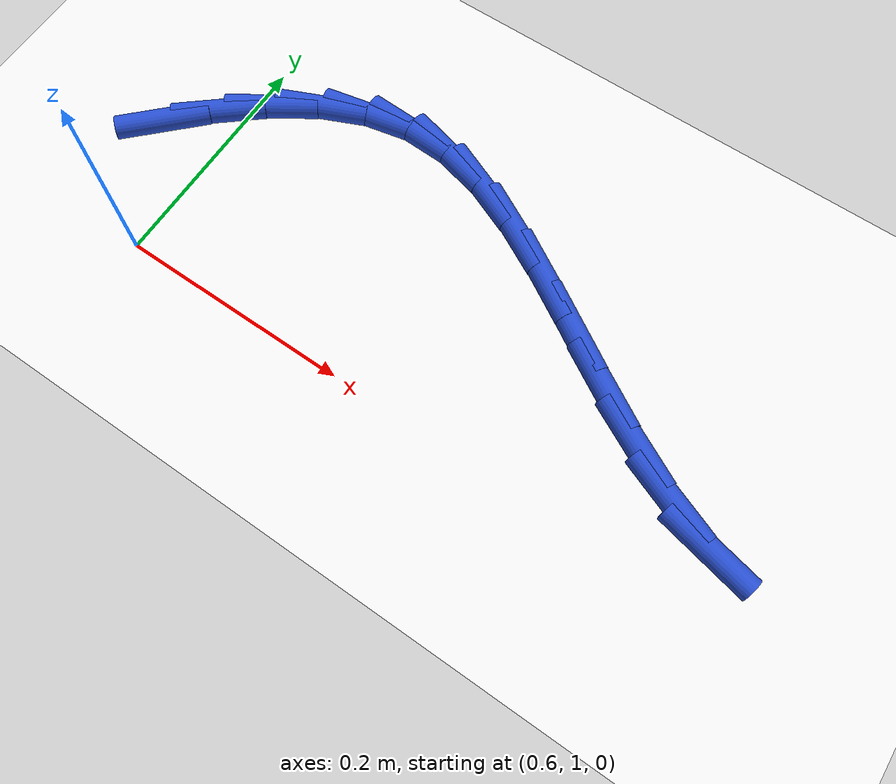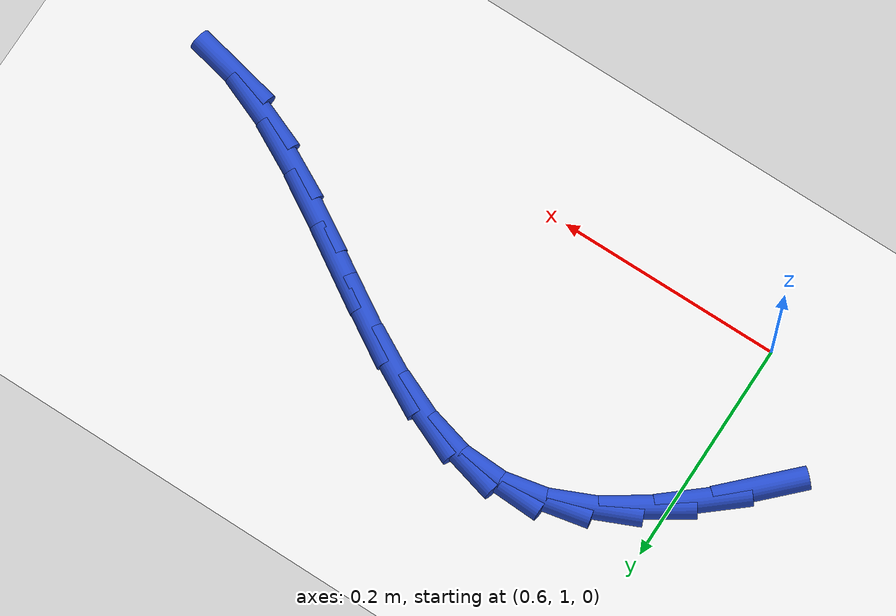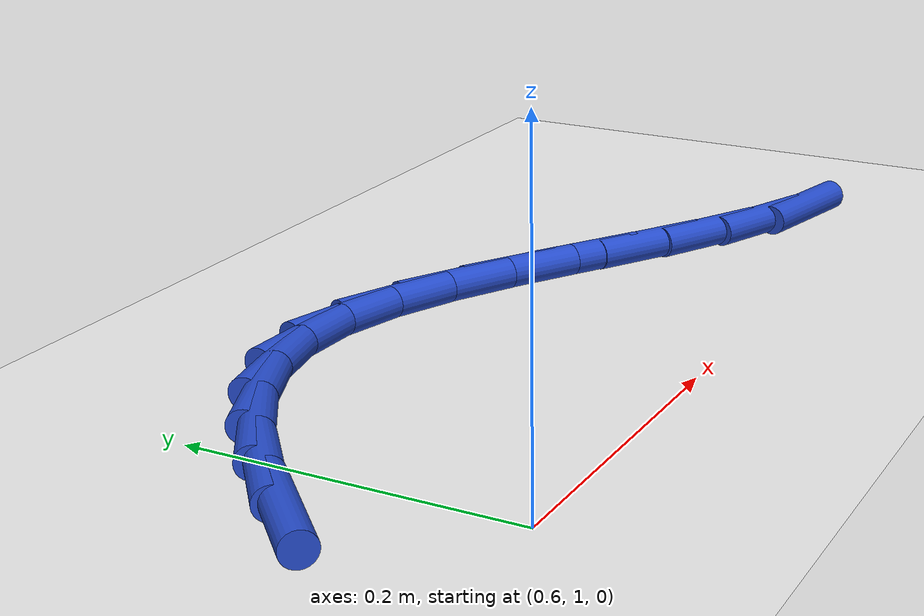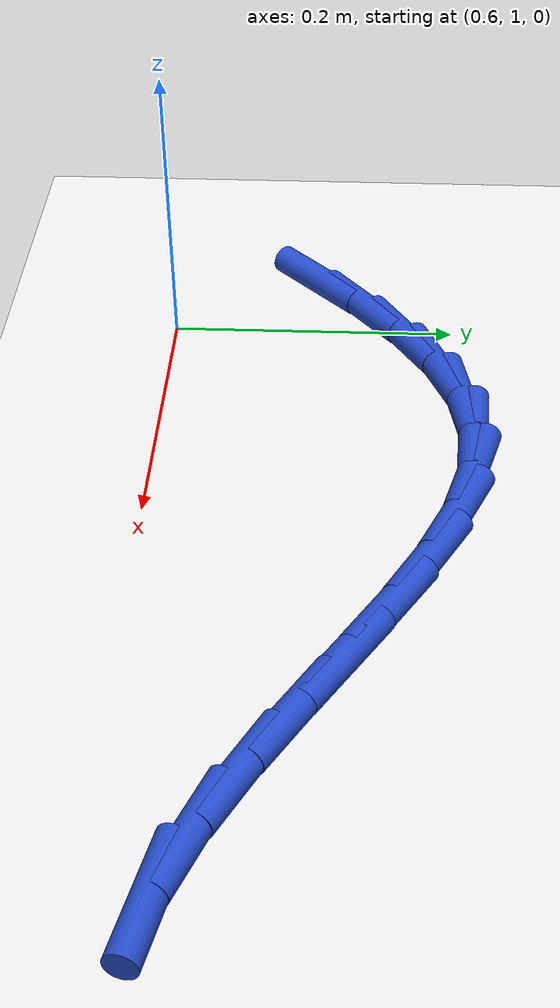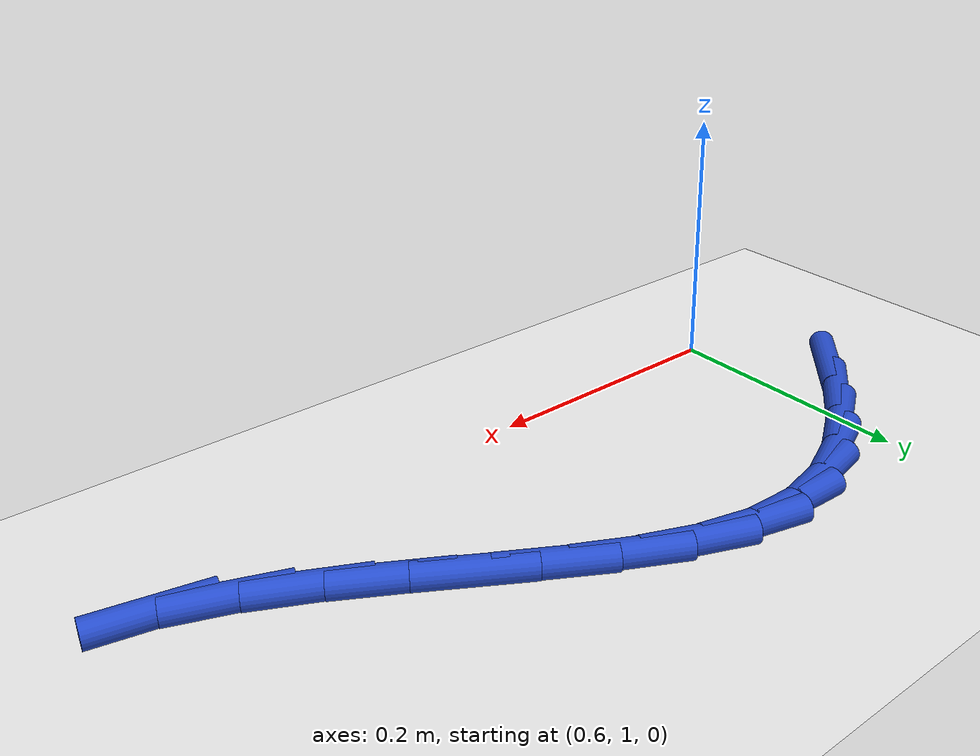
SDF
<sdf version="1.6">
 <world name="default">
  <model name="ground_plane">
   <static>1</static>
   <link name="link">
    <collision name="collision">
     <geometry><plane><normal>0 0 1</normal><size>100 100</size></plane></geometry>
     <surface><friction><ode><mu>100</mu><mu2>50</mu2></ode></friction></surface>
    </collision>
    <visual name="visual">
     <cast_shadows>0</cast_shadows>
     <geometry><plane><normal>0 0 1</normal><size>100 100</size></plane></geometry>
     <material>
      <script><uri>file://media/materials/scripts/gazebo.material</uri><name>Gazebo/WhiteGlow</name></script>
     </material>
    </visual>
   </link>
  </model>
  <model name="line">
   <link name="link_28">
    <pose>0.5466348563264035 1.1023889479485451 0.01 0 1.57 0.7892634327585224</pose>
    <collision name="collision">
     <geometry><cylinder><radius>0.01</radius><length>0.08</length></cylinder></geometry>
    </collision>
    <visual name="visual">
     <material>
      <script><name>Gazebo/Blue</name><uri>file://media/materials/scripts/gazebo.material</uri></script>
     </material>
     <geometry><cylinder><radius>0.01</radius><length>0.08</length></cylinder></geometry>
    </visual>
   </link>
   <link name="link_29">
    <pose>0.5802198890542654 1.136234619810866 0.01 0 1.57 0.7009479614808152</pose>
    <collision name="collision">
     <geometry><cylinder><radius>0.01</radius><length>0.08</length></cylinder></geometry>
    </collision>
    <visual name="visual">
     <material>
      <script><name>Gazebo/Blue</name><uri>file://media/materials/scripts/gazebo.material</uri></script>
     </material>
     <geometry><cylinder><radius>0.01</radius><length>0.08</length></cylinder></geometry>
    </visual>
   </link>
   <link name="link_30">
    <pose>0.6148651040215054 1.1654720690067624 0.01 0 1.57 0.5788244821238404</pose>
    <collision name="collision">
     <geometry><cylinder><radius>0.01</radius><length>0.08</length></cylinder></geometry>
    </collision>
    <visual name="visual">
     <material>
      <script><name>Gazebo/Blue</name><uri>file://media/materials/scripts/gazebo.material</uri></script>
     </material>
     <geometry><cylinder><radius>0.01</radius><length>0.08</length></cylinder></geometry>
    </visual>
   </link>
   <link name="link_31">
    <pose>0.6506506174724509 1.188857531204549 0.01 0 1.57 0.41466766069196653</pose>
    <collision name="collision">
     <geometry><cylinder><radius>0.01</radius><length>0.08</length></cylinder></geometry>
    </collision>
    <visual name="visual">
     <material>
      <script><name>Gazebo/Blue</name><uri>file://media/materials/scripts/gazebo.material</uri></script>
     </material>
     <geometry><cylinder><radius>0.01</radius><length>0.08</length></cylinder></geometry>
    </visual>
   </link>
   <link name="link_32">
    <pose>0.6876565456514293 1.2051472420725422 0.01 0 1.57 0.20463675493655478</pose>
    <collision name="collision">
     <geometry><cylinder><radius>0.01</radius><length>0.08</length></cylinder></geometry>
    </collision>
    <visual name="visual">
     <material>
      <script><name>Gazebo/Blue</name><uri>file://media/materials/scripts/gazebo.material</uri></script>
     </material>
     <geometry><cylinder><radius>0.01</radius><length>0.08</length></cylinder></geometry>
    </visual>
   </link>
   <link name="link_33">
    <pose>0.7259630048027671 1.213097437279056 0.01 0 1.57 -0.03997633124455144</pose>
    <collision name="collision">
     <geometry><cylinder><radius>0.01</radius><length>0.08</length></cylinder></geometry>
    </collision>
    <visual name="visual">
     <material>
      <script><name>Gazebo/Blue</name><uri>file://media/materials/scripts/gazebo.material</uri></script>
     </material>
     <geometry><cylinder><radius>0.01</radius><length>0.08</length></cylinder></geometry>
    </visual>
   </link>
   <link name="link_34">
    <pose>0.7656444221677583 1.2115102742186303 0.01 0 1.57 -0.2588761442368474</pose>
    <collision name="collision">
     <geometry><cylinder><radius>0.01</radius><length>0.08</length></cylinder></geometry>
    </collision>
    <visual name="visual">
     <material>
      <script><name>Gazebo/Blue</name><uri>file://media/materials/scripts/gazebo.material</uri></script>
     </material>
     <geometry><cylinder><radius>0.01</radius><length>0.08</length></cylinder></geometry>
    </visual>
   </link>
   <link name="link_35">
    <pose>0.8065920394312351 1.2006665871160003 0.01 0 1.57 -0.40705937856297325</pose>
    <collision name="collision">
     <geometry><cylinder><radius>0.01</radius><length>0.08</length></cylinder></geometry>
    </collision>
    <visual name="visual">
     <material>
      <script><name>Gazebo/Blue</name><uri>file://media/materials/scripts/gazebo.material</uri></script>
     </material>
     <geometry><cylinder><radius>0.01</radius><length>0.08</length></cylinder></geometry>
    </visual>
   </link>
   <link name="link_36">
    <pose>0.8484790315245709 1.1826074486230036 0.01 0 1.57 -0.4985504513341427</pose>
    <collision name="collision">
     <geometry><cylinder><radius>0.01</radius><length>0.08</length></cylinder></geometry>
    </collision>
    <visual name="visual">
     <material>
      <script><name>Gazebo/Blue</name><uri>file://media/materials/scripts/gazebo.material</uri></script>
     </material>
     <geometry><cylinder><radius>0.01</radius><length>0.08</length></cylinder></geometry>
    </visual>
   </link>
   <link name="link_37">
    <pose>0.8909658416292742 1.1594767022861783 0.01 0 1.57 -0.5474466636740964</pose>
    <collision name="collision">
     <geometry><cylinder><radius>0.01</radius><length>0.08</length></cylinder></geometry>
    </collision>
    <visual name="visual">
     <material>
      <script><name>Gazebo/Blue</name><uri>file://media/materials/scripts/gazebo.material</uri></script>
     </material>
     <geometry><cylinder><radius>0.01</radius><length>0.08</length></cylinder></geometry>
    </visual>
   </link>
   <link name="link_38">
    <pose>0.9337129129268529 1.1334181916520631 0.01 0 1.57 -0.5615444437678313</pose>
    <collision name="collision">
     <geometry><cylinder><radius>0.01</radius><length>0.08</length></cylinder></geometry>
    </collision>
    <visual name="visual">
     <material>
      <script><name>Gazebo/Blue</name><uri>file://media/materials/scripts/gazebo.material</uri></script>
     </material>
     <geometry><cylinder><radius>0.01</radius><length>0.08</length></cylinder></geometry>
    </visual>
   </link>
   <link name="link_39">
    <pose>0.9763806885988158 1.1065757602671966 0.01 0 1.57 -0.5427336826077157</pose>
    <collision name="collision">
     <geometry><cylinder><radius>0.01</radius><length>0.08</length></cylinder></geometry>
    </collision>
    <visual name="visual">
     <material>
      <script><name>Gazebo/Blue</name><uri>file://media/materials/scripts/gazebo.material</uri></script>
     </material>
     <geometry><cylinder><radius>0.01</radius><length>0.08</length></cylinder></geometry>
    </visual>
   </link>
   <link name="link_40">
    <pose>1.018629611826671 1.0810932516781164 0.01 0 1.57 -0.4871472450354404</pose>
    <collision name="collision">
     <geometry><cylinder><radius>0.01</radius><length>0.08</length></cylinder></geometry>
    </collision>
    <visual name="visual">
     <material>
      <script><name>Gazebo/Blue</name><uri>file://media/materials/scripts/gazebo.material</uri></script>
     </material>
     <geometry><cylinder><radius>0.01</radius><length>0.08</length></cylinder></geometry>
    </visual>
   </link>
   <link name="link_41">
    <pose>1.0601201257919268 1.059114509431361 0.01 0 1.57 -0.38421681722168144</pose>
    <collision name="collision">
     <geometry><cylinder><radius>0.01</radius><length>0.08</length></cylinder></geometry>
    </collision>
    <visual name="visual">
     <material>
      <script><name>Gazebo/Blue</name><uri>file://media/materials/scripts/gazebo.material</uri></script>
     </material>
     <geometry><cylinder><radius>0.01</radius><length>0.08</length></cylinder></geometry>
    </visual>
   </link>
   <link name="link_42">
    <pose>1.1005126736760915 1.0427833770734682 0.01 0 1.57 -0.21580517220610754</pose>
    <collision name="collision">
     <geometry><cylinder><radius>0.01</radius><length>0.08</length></cylinder></geometry>
    </collision>
    <visual name="visual">
     <material>
      <script><name>Gazebo/Blue</name><uri>file://media/materials/scripts/gazebo.material</uri></script>
     </material>
     <geometry><cylinder><radius>0.01</radius><length>0.08</length></cylinder></geometry>
    </visual>
   </link>
  </model>
 </world>
</sdf>
